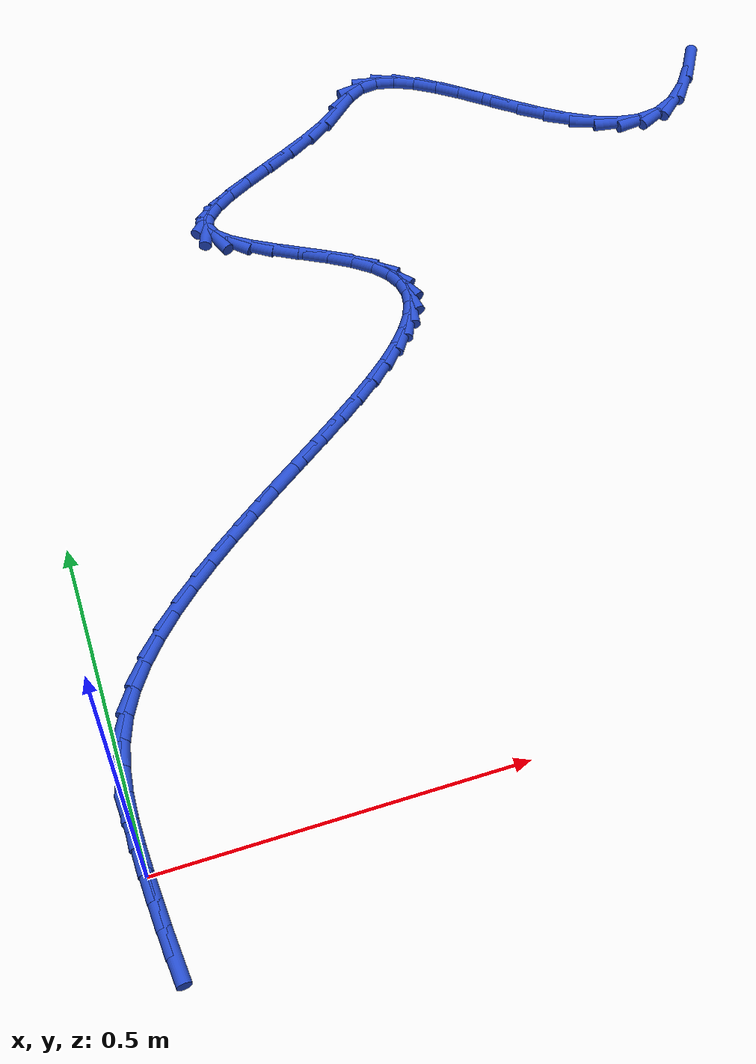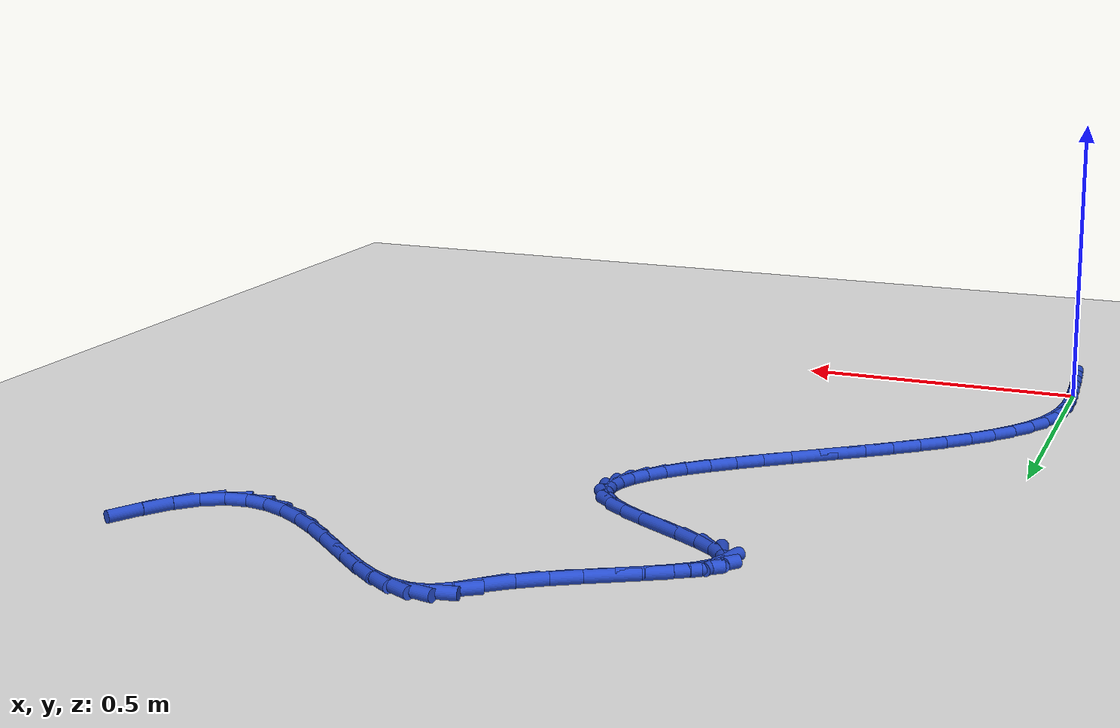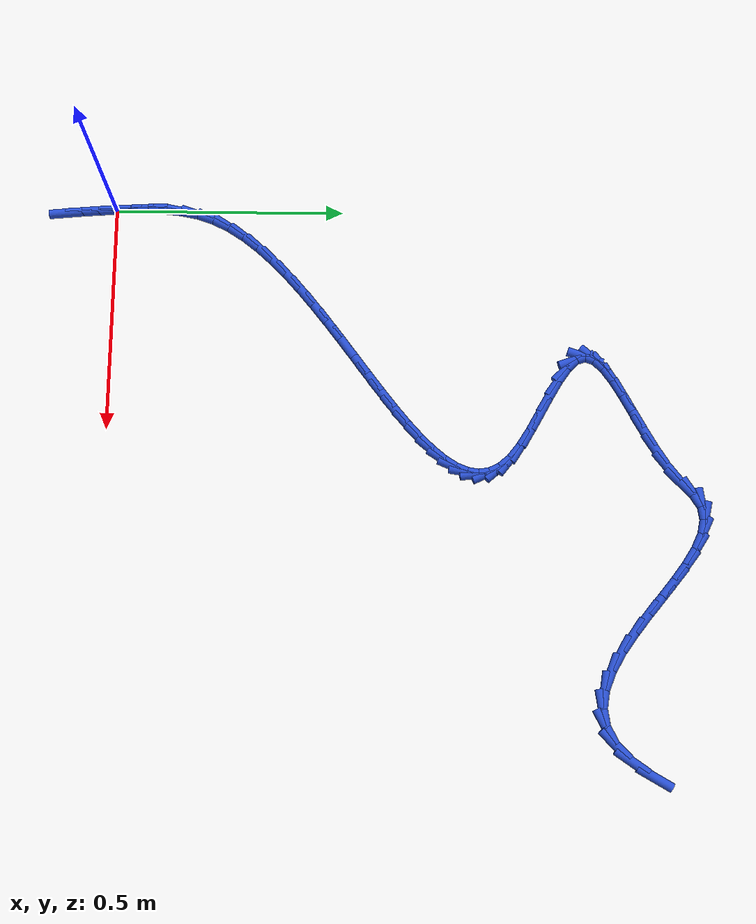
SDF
<sdf version="1.6">
 <world name="default">
  <model name="ground_plane">
   <static>1</static>
   <link name="link">
    <collision name="collision">
     <geometry><plane><normal>0 0 1</normal><size>100 100</size></plane></geometry>
     <surface><friction><ode><mu>100</mu><mu2>50</mu2></ode></friction></surface>
    </collision>
    <visual name="visual">
     <cast_shadows>0</cast_shadows>
     <geometry><plane><normal>0 0 1</normal><size>100 100</size></plane></geometry>
     <material>
      <script><uri>file://media/materials/scripts/gazebo.material</uri><name>Gazebo/WhiteGlow</name></script>
     </material>
    </visual>
   </link>
  </model>
  <model name="line">
   <link name="link_0">
    <pose>4.0549161250957866e-17 -6.938893903907228e-18 0.01 0 1.57 -1.52185023954393</pose>
    <collision name="collision">
     <geometry><cylinder><radius>0.01</radius><length>0.08</length></cylinder></geometry>
    </collision>
    <visual name="visual">
     <material>
      <script><name>Gazebo/Blue</name><uri>file://media/materials/scripts/gazebo.material</uri></script>
     </material>
     <geometry><cylinder><radius>0.01</radius><length>0.08</length></cylinder></geometry>
    </visual>
   </link>
   <link name="link_1">
    <pose>-0.0017894815718800692 0.03653105717077302 0.01 0 1.57 -1.5514126485488813</pose>
    <collision name="collision">
     <geometry><cylinder><radius>0.01</radius><length>0.08</length></cylinder></geometry>
    </collision>
    <visual name="visual">
     <material>
      <script><name>Gazebo/Blue</name><uri>file://media/materials/scripts/gazebo.material</uri></script>
     </material>
     <geometry><cylinder><radius>0.01</radius><length>0.08</length></cylinder></geometry>
    </visual>
   </link>
   <link name="link_2">
    <pose>-0.0024977876290873365 0.07306784529206682 0.01 0 1.57 1.53710981820446</pose>
    <collision name="collision">
     <geometry><cylinder><radius>0.01</radius><length>0.08</length></cylinder></geometry>
    </collision>
    <visual name="visual">
     <material>
      <script><name>Gazebo/Blue</name><uri>file://media/materials/scripts/gazebo.material</uri></script>
     </material>
     <geometry><cylinder><radius>0.01</radius><length>0.08</length></cylinder></geometry>
    </visual>
   </link>
   <link name="link_3">
    <pose>-0.0012706008610770033 0.10948368617913154 0.01 0 1.57 1.4601853632934978</pose>
    <collision name="collision">
     <geometry><cylinder><radius>0.01</radius><length>0.08</length></cylinder></geometry>
    </collision>
    <visual name="visual">
     <material>
      <script><name>Gazebo/Blue</name><uri>file://media/materials/scripts/gazebo.material</uri></script>
     </material>
     <geometry><cylinder><radius>0.01</radius><length>0.08</length></cylinder></geometry>
    </visual>
   </link>
   <link name="link_4">
    <pose>0.0027463960426956906 0.14565190164721714 0.01 0 1.57 1.3599433964282441</pose>
    <collision name="collision">
     <geometry><cylinder><radius>0.01</radius><length>0.08</length></cylinder></geometry>
    </collision>
    <visual name="visual">
     <material>
      <script><name>Gazebo/Blue</name><uri>file://media/materials/scripts/gazebo.material</uri></script>
     </material>
     <geometry><cylinder><radius>0.01</radius><length>0.08</length></cylinder></geometry>
    </visual>
   </link>
   <link name="link_5">
    <pose>0.010407520392775503 0.18144581351157385 0.01 0 1.57 1.239000416244004</pose>
    <collision name="collision">
     <geometry><cylinder><radius>0.01</radius><length>0.08</length></cylinder></geometry>
    </collision>
    <visual name="visual">
     <material>
      <script><name>Gazebo/Blue</name><uri>file://media/materials/scripts/gazebo.material</uri></script>
     </material>
     <geometry><cylinder><radius>0.01</radius><length>0.08</length></cylinder></geometry>
    </visual>
   </link>
   <link name="link_6">
    <pose>0.022567089499707205 0.21673874358745163 0.01 0 1.57 1.1064730745596445</pose>
    <collision name="collision">
     <geometry><cylinder><radius>0.01</radius><length>0.08</length></cylinder></geometry>
    </collision>
    <visual name="visual">
     <material>
      <script><name>Gazebo/Blue</name><uri>file://media/materials/scripts/gazebo.material</uri></script>
     </material>
     <geometry><cylinder><radius>0.01</radius><length>0.08</length></cylinder></geometry>
    </visual>
   </link>
   <link name="link_7">
    <pose>0.039935536010883205 0.25141704141289367 0.01 0 1.57 0.9900699989752234</pose>
    <collision name="collision">
     <geometry><cylinder><radius>0.01</radius><length>0.08</length></cylinder></geometry>
    </collision>
    <visual name="visual">
     <material>
      <script><name>Gazebo/Blue</name><uri>file://media/materials/scripts/gazebo.material</uri></script>
     </material>
     <geometry><cylinder><radius>0.01</radius><length>0.08</length></cylinder></geometry>
    </visual>
   </link>
   <link name="link_8">
    <pose>0.06227039153271126 0.28545333487096836 0.01 0 1.57 0.8969722031873676</pose>
    <collision name="collision">
     <geometry><cylinder><radius>0.01</radius><length>0.08</length></cylinder></geometry>
    </collision>
    <visual name="visual">
     <material>
      <script><name>Gazebo/Blue</name><uri>file://media/materials/scripts/gazebo.material</uri></script>
     </material>
     <geometry><cylinder><radius>0.01</radius><length>0.08</length></cylinder></geometry>
    </visual>
   </link>
   <link name="link_9">
    <pose>0.08894179943286262 0.31885532706733505 0.01 0 1.57 0.8233596326819432</pose>
    <collision name="collision">
     <geometry><cylinder><radius>0.01</radius><length>0.08</length></cylinder></geometry>
    </collision>
    <visual name="visual">
     <material>
      <script><name>Gazebo/Blue</name><uri>file://media/materials/scripts/gazebo.material</uri></script>
     </material>
     <geometry><cylinder><radius>0.01</radius><length>0.08</length></cylinder></geometry>
    </visual>
   </link>
   <link name="link_10">
    <pose>0.11931878188064625 0.35163082262411266 0.01 0 1.57 0.7656658133431868</pose>
    <collision name="collision">
     <geometry><cylinder><radius>0.01</radius><length>0.08</length></cylinder></geometry>
    </collision>
    <visual name="visual">
     <material>
      <script><name>Gazebo/Blue</name><uri>file://media/materials/scripts/gazebo.material</uri></script>
     </material>
     <geometry><cylinder><radius>0.01</radius><length>0.08</length></cylinder></geometry>
    </visual>
   </link>
   <link name="link_11">
    <pose>0.1527703610453711 0.3837876261634192 0.01 0 1.57 0.7209972789925128</pose>
    <collision name="collision">
     <geometry><cylinder><radius>0.01</radius><length>0.08</length></cylinder></geometry>
    </collision>
    <visual name="visual">
     <material>
      <script><name>Gazebo/Blue</name><uri>file://media/materials/scripts/gazebo.material</uri></script>
     </material>
     <geometry><cylinder><radius>0.01</radius><length>0.08</length></cylinder></geometry>
    </visual>
   </link>
   <link name="link_12">
    <pose>0.18866555909634602 0.4153335423073732 0.01 0 1.57 0.6871728330269824</pose>
    <collision name="collision">
     <geometry><cylinder><radius>0.01</radius><length>0.08</length></cylinder></geometry>
    </collision>
    <visual name="visual">
     <material>
      <script><name>Gazebo/Blue</name><uri>file://media/materials/scripts/gazebo.material</uri></script>
     </material>
     <geometry><cylinder><radius>0.01</radius><length>0.08</length></cylinder></geometry>
    </visual>
   </link>
   <link name="link_13">
    <pose>0.22637339820288008 0.4462763756780934 0.01 0 1.57 0.6626459752604367</pose>
    <collision name="collision">
     <geometry><cylinder><radius>0.01</radius><length>0.08</length></cylinder></geometry>
    </collision>
    <visual name="visual">
     <material>
      <script><name>Gazebo/Blue</name><uri>file://media/materials/scripts/gazebo.material</uri></script>
     </material>
     <geometry><cylinder><radius>0.01</radius><length>0.08</length></cylinder></geometry>
    </visual>
   </link>
   <link name="link_14">
    <pose>0.2652629005342819 0.47662393089769783 0.01 0 1.57 0.6464146395870033</pose>
    <collision name="collision">
     <geometry><cylinder><radius>0.01</radius><length>0.08</length></cylinder></geometry>
    </collision>
    <visual name="visual">
     <material>
      <script><name>Gazebo/Blue</name><uri>file://media/materials/scripts/gazebo.material</uri></script>
     </material>
     <geometry><cylinder><radius>0.01</radius><length>0.08</length></cylinder></geometry>
    </visual>
   </link>
   <link name="link_15">
    <pose>0.30470308825986075 0.5063840125883051 0.01 0 1.57 0.6379577326848062</pose>
    <collision name="collision">
     <geometry><cylinder><radius>0.01</radius><length>0.08</length></cylinder></geometry>
    </collision>
    <visual name="visual">
     <material>
      <script><name>Gazebo/Blue</name><uri>file://media/materials/scripts/gazebo.material</uri></script>
     </material>
     <geometry><cylinder><radius>0.01</radius><length>0.08</length></cylinder></geometry>
    </visual>
   </link>
   <link name="link_16">
    <pose>0.34406298354892534 0.5355644253720336 0.01 0 1.57 0.6372135277538157</pose>
    <collision name="collision">
     <geometry><cylinder><radius>0.01</radius><length>0.08</length></cylinder></geometry>
    </collision>
    <visual name="visual">
     <material>
      <script><name>Gazebo/Blue</name><uri>file://media/materials/scripts/gazebo.material</uri></script>
     </material>
     <geometry><cylinder><radius>0.01</radius><length>0.08</length></cylinder></geometry>
    </visual>
   </link>
   <link name="link_17">
    <pose>0.38271160857078473 0.5641729738710021 0.01 0 1.57 0.6446102346289906</pose>
    <collision name="collision">
     <geometry><cylinder><radius>0.01</radius><length>0.08</length></cylinder></geometry>
    </collision>
    <visual name="visual">
     <material>
      <script><name>Gazebo/Blue</name><uri>file://media/materials/scripts/gazebo.material</uri></script>
     </material>
     <geometry><cylinder><radius>0.01</radius><length>0.08</length></cylinder></geometry>
    </visual>
   </link>
   <link name="link_18">
    <pose>0.4200179854947478 0.5922174627073284 0.01 0 1.57 0.6611647308605674</pose>
    <collision name="collision">
     <geometry><cylinder><radius>0.01</radius><length>0.08</length></cylinder></geometry>
    </collision>
    <visual name="visual">
     <material>
      <script><name>Gazebo/Blue</name><uri>file://media/materials/scripts/gazebo.material</uri></script>
     </material>
     <geometry><cylinder><radius>0.01</radius><length>0.08</length></cylinder></geometry>
    </visual>
   </link>
   <link name="link_19">
    <pose>0.4553511364901233 0.6197056965031313 0.01 0 1.57 0.6886791478817208</pose>
    <collision name="collision">
     <geometry><cylinder><radius>0.01</radius><length>0.08</length></cylinder></geometry>
    </collision>
    <visual name="visual">
     <material>
      <script><name>Gazebo/Blue</name><uri>file://media/materials/scripts/gazebo.material</uri></script>
     </material>
     <geometry><cylinder><radius>0.01</radius><length>0.08</length></cylinder></geometry>
    </visual>
   </link>
   <link name="link_20">
    <pose>0.48808008372622036 0.6466454798805293 0.01 0 1.57 0.7300875339702076</pose>
    <collision name="collision">
     <geometry><cylinder><radius>0.01</radius><length>0.08</length></cylinder></geometry>
    </collision>
    <visual name="visual">
     <material>
      <script><name>Gazebo/Blue</name><uri>file://media/materials/scripts/gazebo.material</uri></script>
     </material>
     <geometry><cylinder><radius>0.01</radius><length>0.08</length></cylinder></geometry>
    </visual>
   </link>
   <link name="link_21">
    <pose>0.517573849372348 0.6730446174616407 0.01 0 1.57 0.7900334398047495</pose>
    <collision name="collision">
     <geometry><cylinder><radius>0.01</radius><length>0.08</length></cylinder></geometry>
    </collision>
    <visual name="visual">
     <material>
      <script><name>Gazebo/Blue</name><uri>file://media/materials/scripts/gazebo.material</uri></script>
     </material>
     <geometry><cylinder><radius>0.01</radius><length>0.08</length></cylinder></geometry>
    </visual>
   </link>
   <link name="link_22">
    <pose>0.5432014555978149 0.6989109138685841 0.01 0 1.57 0.8757611371465852</pose>
    <collision name="collision">
     <geometry><cylinder><radius>0.01</radius><length>0.08</length></cylinder></geometry>
    </collision>
    <visual name="visual">
     <material>
      <script><name>Gazebo/Blue</name><uri>file://media/materials/scripts/gazebo.material</uri></script>
     </material>
     <geometry><cylinder><radius>0.01</radius><length>0.08</length></cylinder></geometry>
    </visual>
   </link>
   <link name="link_23">
    <pose>0.5643319245719303 0.7242521737234777 0.01 0 1.57 0.998204257731185</pose>
    <collision name="collision">
     <geometry><cylinder><radius>0.01</radius><length>0.08</length></cylinder></geometry>
    </collision>
    <visual name="visual">
     <material>
      <script><name>Gazebo/Blue</name><uri>file://media/materials/scripts/gazebo.material</uri></script>
     </material>
     <geometry><cylinder><radius>0.01</radius><length>0.08</length></cylinder></geometry>
    </visual>
   </link>
   <link name="link_24">
    <pose>0.5803342784640025 0.74907620164844 0.01 0 1.57 1.1720805567565529</pose>
    <collision name="collision">
     <geometry><cylinder><radius>0.01</radius><length>0.08</length></cylinder></geometry>
    </collision>
    <visual name="visual">
     <material>
      <script><name>Gazebo/Blue</name><uri>file://media/materials/scripts/gazebo.material</uri></script>
     </material>
     <geometry><cylinder><radius>0.01</radius><length>0.08</length></cylinder></geometry>
    </visual>
   </link>
   <link name="link_25">
    <pose>0.5905775394433411 0.7733908022655895 0.01 0 1.57 1.4103762416425547</pose>
    <collision name="collision">
     <geometry><cylinder><radius>0.01</radius><length>0.08</length></cylinder></geometry>
    </collision>
    <visual name="visual">
     <material>
      <script><name>Gazebo/Blue</name><uri>file://media/materials/scripts/gazebo.material</uri></script>
     </material>
     <geometry><cylinder><radius>0.01</radius><length>0.08</length></cylinder></geometry>
    </visual>
   </link>
   <link name="link_26">
    <pose>0.5944307296792548 0.7972037801970446 0.01 0 1.57 -1.4357749925882015</pose>
    <collision name="collision">
     <geometry><cylinder><radius>0.01</radius><length>0.08</length></cylinder></geometry>
    </collision>
    <visual name="visual">
     <material>
      <script><name>Gazebo/Blue</name><uri>file://media/materials/scripts/gazebo.material</uri></script>
     </material>
     <geometry><cylinder><radius>0.01</radius><length>0.08</length></cylinder></geometry>
    </visual>
   </link>
   <link name="link_27">
    <pose>0.5912628713410522 0.8205229400649234 0.01 0 1.57 -1.128272459672479</pose>
    <collision name="collision">
     <geometry><cylinder><radius>0.01</radius><length>0.08</length></cylinder></geometry>
    </collision>
    <visual name="visual">
     <material>
      <script><name>Gazebo/Blue</name><uri>file://media/materials/scripts/gazebo.material</uri></script>
     </material>
     <geometry><cylinder><radius>0.01</radius><length>0.08</length></cylinder></geometry>
    </visual>
   </link>
   <link name="link_28">
    <pose>0.5804429865980428 0.8433560864913452 0.01 0 1.57 -0.8636801971120777</pose>
    <collision name="collision">
     <geometry><cylinder><radius>0.01</radius><length>0.08</length></cylinder></geometry>
    </collision>
    <visual name="visual">
     <material>
      <script><name>Gazebo/Blue</name><uri>file://media/materials/scripts/gazebo.material</uri></script>
     </material>
     <geometry><cylinder><radius>0.01</radius><length>0.08</length></cylinder></geometry>
    </visual>
   </link>
   <link name="link_29">
    <pose>0.5613400976195351 0.8657110240984276 0.01 0 1.57 -0.6682199195717694</pose>
    <collision name="collision">
     <geometry><cylinder><radius>0.01</radius><length>0.08</length></cylinder></geometry>
    </collision>
    <visual name="visual">
     <material>
      <script><name>Gazebo/Blue</name><uri>file://media/materials/scripts/gazebo.material</uri></script>
     </material>
     <geometry><cylinder><radius>0.01</radius><length>0.08</length></cylinder></geometry>
    </visual>
   </link>
   <link name="link_30">
    <pose>0.5336132605426608 0.8875975044585684 0.01 0 1.57 -0.5584790025619196</pose>
    <collision name="collision">
     <geometry><cylinder><radius>0.01</radius><length>0.08</length></cylinder></geometry>
    </collision>
    <visual name="visual">
     <material>
      <script><name>Gazebo/Blue</name><uri>file://media/materials/scripts/gazebo.material</uri></script>
     </material>
     <geometry><cylinder><radius>0.01</radius><length>0.08</length></cylinder></geometry>
    </visual>
   </link>
   <link name="link_31">
    <pose>0.4992941514390502 0.909041206151193 0.01 0 1.57 -0.5086994821933081</pose>
    <collision name="collision">
     <geometry><cylinder><radius>0.01</radius><length>0.08</length></cylinder></geometry>
    </collision>
    <visual name="visual">
     <material>
      <script><name>Gazebo/Blue</name><uri>file://media/materials/scripts/gazebo.material</uri></script>
     </material>
     <geometry><cylinder><radius>0.01</radius><length>0.08</length></cylinder></geometry>
    </visual>
   </link>
   <link name="link_32">
    <pose>0.4615746243389148 0.9300755958393682 0.01 0 1.57 -0.49883553529728303</pose>
    <collision name="collision">
     <geometry><cylinder><radius>0.01</radius><length>0.08</length></cylinder></geometry>
    </collision>
    <visual name="visual">
     <material>
      <script><name>Gazebo/Blue</name><uri>file://media/materials/scripts/gazebo.material</uri></script>
     </material>
     <geometry><cylinder><radius>0.01</radius><length>0.08</length></cylinder></geometry>
    </visual>
   </link>
   <link name="link_33">
    <pose>0.4236544309182554 0.9507341932017568 0.01 0 1.57 -0.5269130423250743</pose>
    <collision name="collision">
     <geometry><cylinder><radius>0.01</radius><length>0.08</length></cylinder></geometry>
    </collision>
    <visual name="visual">
     <material>
      <script><name>Gazebo/Blue</name><uri>file://media/materials/scripts/gazebo.material</uri></script>
     </material>
     <geometry><cylinder><radius>0.01</radius><length>0.08</length></cylinder></geometry>
    </visual>
   </link>
   <link name="link_34">
    <pose>0.38873332285307316 0.9710505179170217 0.01 0 1.57 -0.6084319466866757</pose>
    <collision name="collision">
     <geometry><cylinder><radius>0.01</radius><length>0.08</length></cylinder></geometry>
    </collision>
    <visual name="visual">
     <material>
      <script><name>Gazebo/Blue</name><uri>file://media/materials/scripts/gazebo.material</uri></script>
     </material>
     <geometry><cylinder><radius>0.01</radius><length>0.08</length></cylinder></geometry>
    </visual>
   </link>
   <link name="link_35">
    <pose>0.36001105181936877 0.9910580896638257 0.01 0 1.57 -0.7958611140555002</pose>
    <collision name="collision">
     <geometry><cylinder><radius>0.01</radius><length>0.08</length></cylinder></geometry>
    </collision>
    <visual name="visual">
     <material>
      <script><name>Gazebo/Blue</name><uri>file://media/materials/scripts/gazebo.material</uri></script>
     </material>
     <geometry><cylinder><radius>0.01</radius><length>0.08</length></cylinder></geometry>
    </visual>
   </link>
   <link name="link_36">
    <pose>0.34068736949314327 1.0107904281208315 0.01 0 1.57 -1.2360688434260683</pose>
    <collision name="collision">
     <geometry><cylinder><radius>0.01</radius><length>0.08</length></cylinder></geometry>
    </collision>
    <visual name="visual">
     <material>
      <script><name>Gazebo/Blue</name><uri>file://media/materials/scripts/gazebo.material</uri></script>
     </material>
     <geometry><cylinder><radius>0.01</radius><length>0.08</length></cylinder></geometry>
    </visual>
   </link>
   <link name="link_37">
    <pose>0.3339076174800267 1.030282802776633 0.01 0 1.57 1.2392886105134389</pose>
    <collision name="collision">
     <geometry><cylinder><radius>0.01</radius><length>0.08</length></cylinder></geometry>
    </collision>
    <visual name="visual">
     <material>
      <script><name>Gazebo/Blue</name><uri>file://media/materials/scripts/gazebo.material</uri></script>
     </material>
     <geometry><cylinder><radius>0.01</radius><length>0.08</length></cylinder></geometry>
    </visual>
   </link>
   <link name="link_38">
    <pose>0.34057149516570917 1.0496427022334927 0.01 0 1.57 0.8232768029697289</pose>
    <collision name="collision">
     <geometry><cylinder><radius>0.01</radius><length>0.08</length></cylinder></geometry>
    </collision>
    <visual name="visual">
     <material>
      <script><name>Gazebo/Blue</name><uri>file://media/materials/scripts/gazebo.material</uri></script>
     </material>
     <geometry><cylinder><radius>0.01</radius><length>0.08</length></cylinder></geometry>
    </visual>
   </link>
   <link name="link_39">
    <pose>0.35858373851987274 1.0690739321300435 0.01 0 1.57 0.6296447900452782</pose>
    <collision name="collision">
     <geometry><cylinder><radius>0.01</radius><length>0.08</length></cylinder></geometry>
    </collision>
    <visual name="visual">
     <material>
      <script><name>Gazebo/Blue</name><uri>file://media/materials/scripts/gazebo.material</uri></script>
     </material>
     <geometry><cylinder><radius>0.01</radius><length>0.08</length></cylinder></geometry>
    </visual>
   </link>
   <link name="link_40">
    <pose>0.385640903360843 1.088786993109975 0.01 0 1.57 0.5388125860778482</pose>
    <collision name="collision">
     <geometry><cylinder><radius>0.01</radius><length>0.08</length></cylinder></geometry>
    </collision>
    <visual name="visual">
     <material>
      <script><name>Gazebo/Blue</name><uri>file://media/materials/scripts/gazebo.material</uri></script>
     </material>
     <geometry><cylinder><radius>0.01</radius><length>0.08</length></cylinder></geometry>
    </visual>
   </link>
   <link name="link_41">
    <pose>0.41943954550694595 1.1089923858169755 0.01 0 1.57 0.5003913533586438</pose>
    <collision name="collision">
     <geometry><cylinder><radius>0.01</radius><length>0.08</length></cylinder></geometry>
    </collision>
    <visual name="visual">
     <material>
      <script><name>Gazebo/Blue</name><uri>file://media/materials/scripts/gazebo.material</uri></script>
     </material>
     <geometry><cylinder><radius>0.01</radius><length>0.08</length></cylinder></geometry>
    </visual>
   </link>
   <link name="link_42">
    <pose>0.457676220776507 1.1299006108947345 0.01 0 1.57 0.495537356174492</pose>
    <collision name="collision">
     <geometry><cylinder><radius>0.01</radius><length>0.08</length></cylinder></geometry>
    </collision>
    <visual name="visual">
     <material>
      <script><name>Gazebo/Blue</name><uri>file://media/materials/scripts/gazebo.material</uri></script>
     </material>
     <geometry><cylinder><radius>0.01</radius><length>0.08</length></cylinder></geometry>
    </visual>
   </link>
   <link name="link_43">
    <pose>0.4980474849878519 1.15172216898694 0.01 0 1.57 0.5186319276873228</pose>
    <collision name="collision">
     <geometry><cylinder><radius>0.01</radius><length>0.08</length></cylinder></geometry>
    </collision>
    <visual name="visual">
     <material>
      <script><name>Gazebo/Blue</name><uri>file://media/materials/scripts/gazebo.material</uri></script>
     </material>
     <geometry><cylinder><radius>0.01</radius><length>0.08</length></cylinder></geometry>
    </visual>
   </link>
   <link name="link_44">
    <pose>0.538249893959307 1.1746675607372814 0.01 0 1.57 0.5717997279888994</pose>
    <collision name="collision">
     <geometry><cylinder><radius>0.01</radius><length>0.08</length></cylinder></geometry>
    </collision>
    <visual name="visual">
     <material>
      <script><name>Gazebo/Blue</name><uri>file://media/materials/scripts/gazebo.material</uri></script>
     </material>
     <geometry><cylinder><radius>0.01</radius><length>0.08</length></cylinder></geometry>
    </visual>
   </link>
   <link name="link_45">
    <pose>0.5759800035091973 1.1989472867894477 0.01 0 1.57 0.6646892120676976</pose>
    <collision name="collision">
     <geometry><cylinder><radius>0.01</radius><length>0.08</length></cylinder></geometry>
    </collision>
    <visual name="visual">
     <material>
      <script><name>Gazebo/Blue</name><uri>file://media/materials/scripts/gazebo.material</uri></script>
     </material>
     <geometry><cylinder><radius>0.01</radius><length>0.08</length></cylinder></geometry>
    </visual>
   </link>
   <link name="link_46">
    <pose>0.608934369455849 1.2247718477871272 0.01 0 1.57 0.7715759841904085</pose>
    <collision name="collision">
     <geometry><cylinder><radius>0.01</radius><length>0.08</length></cylinder></geometry>
    </collision>
    <visual name="visual">
     <material>
      <script><name>Gazebo/Blue</name><uri>file://media/materials/scripts/gazebo.material</uri></script>
     </material>
     <geometry><cylinder><radius>0.01</radius><length>0.08</length></cylinder></geometry>
    </visual>
   </link>
   <link name="link_47">
    <pose>0.6358750537948947 1.2509778818736104 0.01 0 1.57 0.5727125876559368</pose>
    <collision name="collision">
     <geometry><cylinder><radius>0.01</radius><length>0.08</length></cylinder></geometry>
    </collision>
    <visual name="visual">
     <material>
      <script><name>Gazebo/Blue</name><uri>file://media/materials/scripts/gazebo.material</uri></script>
     </material>
     <geometry><cylinder><radius>0.01</radius><length>0.08</length></cylinder></geometry>
    </visual>
   </link>
   <link name="link_48">
    <pose>0.6622998785806712 1.268016668502915 0.01 0 1.57 0.15399709920893923</pose>
    <collision name="collision">
     <geometry><cylinder><radius>0.01</radius><length>0.08</length></cylinder></geometry>
    </collision>
    <visual name="visual">
     <material>
      <script><name>Gazebo/Blue</name><uri>file://media/materials/scripts/gazebo.material</uri></script>
     </material>
     <geometry><cylinder><radius>0.01</radius><length>0.08</length></cylinder></geometry>
    </visual>
   </link>
   <link name="link_49">
    <pose>0.6910181468104952 1.2724744936100958 0.01 0 1.57 -0.1992596876874177</pose>
    <collision name="collision">
     <geometry><cylinder><radius>0.01</radius><length>0.08</length></cylinder></geometry>
    </collision>
    <visual name="visual">
     <material>
      <script><name>Gazebo/Blue</name><uri>file://media/materials/scripts/gazebo.material</uri></script>
     </material>
     <geometry><cylinder><radius>0.01</radius><length>0.08</length></cylinder></geometry>
    </visual>
   </link>
   <link name="link_50">
    <pose>0.7217977998325201 1.2662588683845148 0.01 0 1.57 -0.42978826728244734</pose>
    <collision name="collision">
     <geometry><cylinder><radius>0.01</radius><length>0.08</length></cylinder></geometry>
    </collision>
    <visual name="visual">
     <material>
      <script><name>Gazebo/Blue</name><uri>file://media/materials/scripts/gazebo.material</uri></script>
     </material>
     <geometry><cylinder><radius>0.01</radius><length>0.08</length></cylinder></geometry>
    </visual>
   </link>
   <link name="link_51">
    <pose>0.7543798264323355 1.25132441489047 0.01 0 1.57 -0.5663641937381623</pose>
    <collision name="collision">
     <geometry><cylinder><radius>0.01</radius><length>0.08</length></cylinder></geometry>
    </collision>
    <visual name="visual">
     <material>
      <script><name>Gazebo/Blue</name><uri>file://media/materials/scripts/gazebo.material</uri></script>
     </material>
     <geometry><cylinder><radius>0.01</radius><length>0.08</length></cylinder></geometry>
    </visual>
   </link>
   <link name="link_52">
    <pose>0.7885052153955313 1.22962575519226 0.01 0 1.57 -0.6426137799060258</pose>
    <collision name="collision">
     <geometry><cylinder><radius>0.01</radius><length>0.08</length></cylinder></geometry>
    </collision>
    <visual name="visual">
     <material>
      <script><name>Gazebo/Blue</name><uri>file://media/materials/scripts/gazebo.material</uri></script>
     </material>
     <geometry><cylinder><radius>0.01</radius><length>0.08</length></cylinder></geometry>
    </visual>
   </link>
   <link name="link_53">
    <pose>0.8239149555076982 1.2031175113541839 0.01 0 1.57 -0.6783310738397543</pose>
    <collision name="collision">
     <geometry><cylinder><radius>0.01</radius><length>0.08</length></cylinder></geometry>
    </collision>
    <visual name="visual">
     <material>
      <script><name>Gazebo/Blue</name><uri>file://media/materials/scripts/gazebo.material</uri></script>
     </material>
     <geometry><cylinder><radius>0.01</radius><length>0.08</length></cylinder></geometry>
    </visual>
   </link>
   <link name="link_54">
    <pose>0.8603500355544256 1.1737543054405393 0.01 0 1.57 -0.6829218465158536</pose>
    <collision name="collision">
     <geometry><cylinder><radius>0.01</radius><length>0.08</length></cylinder></geometry>
    </collision>
    <visual name="visual">
     <material>
      <script><name>Gazebo/Blue</name><uri>file://media/materials/scripts/gazebo.material</uri></script>
     </material>
     <geometry><cylinder><radius>0.01</radius><length>0.08</length></cylinder></geometry>
    </visual>
   </link>
   <link name="link_55">
    <pose>0.8975514443213037 1.143490759515624 0.01 0 1.57 -0.6590615180974684</pose>
    <collision name="collision">
     <geometry><cylinder><radius>0.01</radius><length>0.08</length></cylinder></geometry>
    </collision>
    <visual name="visual">
     <material>
      <script><name>Gazebo/Blue</name><uri>file://media/materials/scripts/gazebo.material</uri></script>
     </material>
     <geometry><cylinder><radius>0.01</radius><length>0.08</length></cylinder></geometry>
    </visual>
   </link>
   <link name="link_56">
    <pose>0.9352601705939225 1.1142814956437381 0.01 0 1.57 -0.6041615672631026</pose>
    <collision name="collision">
     <geometry><cylinder><radius>0.01</radius><length>0.08</length></cylinder></geometry>
    </collision>
    <visual name="visual">
     <material>
      <script><name>Gazebo/Blue</name><uri>file://media/materials/scripts/gazebo.material</uri></script>
     </material>
     <geometry><cylinder><radius>0.01</radius><length>0.08</length></cylinder></geometry>
    </visual>
   </link>
   <link name="link_57">
    <pose>0.9732172031578722 1.0880811358891784 0.01 0 1.57 -0.510225276558021</pose>
    <collision name="collision">
     <geometry><cylinder><radius>0.01</radius><length>0.08</length></cylinder></geometry>
    </collision>
    <visual name="visual">
     <material>
      <script><name>Gazebo/Blue</name><uri>file://media/materials/scripts/gazebo.material</uri></script>
     </material>
     <geometry><cylinder><radius>0.01</radius><length>0.08</length></cylinder></geometry>
    </visual>
   </link>
   <link name="link_58">
    <pose>1.0111635307987423 1.0668443023162446 0.01 0 1.57 -0.363183490446987</pose>
    <collision name="collision">
     <geometry><cylinder><radius>0.01</radius><length>0.08</length></cylinder></geometry>
    </collision>
    <visual name="visual">
     <material>
      <script><name>Gazebo/Blue</name><uri>file://media/materials/scripts/gazebo.material</uri></script>
     </material>
     <geometry><cylinder><radius>0.01</radius><length>0.08</length></cylinder></geometry>
    </visual>
   </link>
   <link name="link_59">
    <pose>1.0488401423021236 1.052525616989234 0.01 0 1.57 -0.14556404478726406</pose>
    <collision name="collision">
     <geometry><cylinder><radius>0.01</radius><length>0.08</length></cylinder></geometry>
    </collision>
    <visual name="visual">
     <material>
      <script><name>Gazebo/Blue</name><uri>file://media/materials/scripts/gazebo.material</uri></script>
     </material>
     <geometry><cylinder><radius>0.01</radius><length>0.08</length></cylinder></geometry>
    </visual>
   </link>
   <link name="link_60">
    <pose>1.085988026453605 1.0470797019724454 0.01 0 1.57 0.14693811745827254</pose>
    <collision name="collision">
     <geometry><cylinder><radius>0.01</radius><length>0.08</length></cylinder></geometry>
    </collision>
    <visual name="visual">
     <material>
      <script><name>Gazebo/Blue</name><uri>file://media/materials/scripts/gazebo.material</uri></script>
     </material>
     <geometry><cylinder><radius>0.01</radius><length>0.08</length></cylinder></geometry>
    </visual>
   </link>
   <link name="link_61">
    <pose>1.122348172038778 1.0524611793301777 0.01 0 1.57 0.4750626391697864</pose>
    <collision name="collision">
     <geometry><cylinder><radius>0.01</radius><length>0.08</length></cylinder></geometry>
    </collision>
    <visual name="visual">
     <material>
      <script><name>Gazebo/Blue</name><uri>file://media/materials/scripts/gazebo.material</uri></script>
     </material>
     <geometry><cylinder><radius>0.01</radius><length>0.08</length></cylinder></geometry>
    </visual>
   </link>
   <link name="link_62">
    <pose>1.1576615678432316 1.0706246711267289 0.01 0 1.57 0.7688002010265766</pose>
    <collision name="collision">
     <geometry><cylinder><radius>0.01</radius><length>0.08</length></cylinder></geometry>
    </collision>
    <visual name="visual">
     <material>
      <script><name>Gazebo/Blue</name><uri>file://media/materials/scripts/gazebo.material</uri></script>
     </material>
     <geometry><cylinder><radius>0.01</radius><length>0.08</length></cylinder></geometry>
    </visual>
   </link>
   <link name="link_63">
    <pose>1.1916681852753925 1.103520738332192 0.01 0 1.57 0.9641058865481967</pose>
    <collision name="collision">
     <geometry><cylinder><radius>0.01</radius><length>0.08</length></cylinder></geometry>
    </collision>
    <visual name="visual">
     <material>
      <script><name>Gazebo/Blue</name><uri>file://media/materials/scripts/gazebo.material</uri></script>
     </material>
     <geometry><cylinder><radius>0.01</radius><length>0.08</length></cylinder></geometry>
    </visual>
   </link>
   <link name="link_64">
    <pose>1.2229961047785605 1.1486615742011617 0.01 0 1.57 1.050769904820477</pose>
    <collision name="collision">
     <geometry><cylinder><radius>0.01</radius><length>0.08</length></cylinder></geometry>
    </collision>
    <visual name="visual">
     <material>
      <script><name>Gazebo/Blue</name><uri>file://media/materials/scripts/gazebo.material</uri></script>
     </material>
     <geometry><cylinder><radius>0.01</radius><length>0.08</length></cylinder></geometry>
    </visual>
   </link>
   <link name="link_277">
    <pose>0.008095685114359956 -0.10887185541344839 0.01 0 1.57 -1.48052775702787</pose>
    <collision name="collision">
     <geometry><cylinder><radius>0.01</radius><length>0.08</length></cylinder></geometry>
    </collision>
    <visual name="visual">
     <material>
      <script><name>Gazebo/Blue</name><uri>file://media/materials/scripts/gazebo.material</uri></script>
     </material>
     <geometry><cylinder><radius>0.01</radius><length>0.08</length></cylinder></geometry>
    </visual>
   </link>
   <link name="link_278">
    <pose>0.004822512420749454 -0.07271001658854101 0.01 0 1.57 -1.4984779437603797</pose>
    <collision name="collision">
     <geometry><cylinder><radius>0.01</radius><length>0.08</length></cylinder></geometry>
    </collision>
    <visual name="visual">
     <material>
      <script><name>Gazebo/Blue</name><uri>file://media/materials/scripts/gazebo.material</uri></script>
     </material>
     <geometry><cylinder><radius>0.01</radius><length>0.08</length></cylinder></geometry>
    </visual>
   </link>
   <link name="link_279">
    <pose>0.0021935012729019194 -0.03642012401519655 0.01 0 1.57 -1.5106412650151164</pose>
    <collision name="collision">
     <geometry><cylinder><radius>0.01</radius><length>0.08</length></cylinder></geometry>
    </collision>
    <visual name="visual">
     <material>
      <script><name>Gazebo/Blue</name><uri>file://media/materials/scripts/gazebo.material</uri></script>
     </material>
     <geometry><cylinder><radius>0.01</radius><length>0.08</length></cylinder></geometry>
    </visual>
   </link>
   <link name="link_280">
    <pose>2.905661822261152e-17 1.942890293094024e-16 0.01 0 1.57 -1.5170449580165966</pose>
    <collision name="collision">
     <geometry><cylinder><radius>0.01</radius><length>0.08</length></cylinder></geometry>
    </collision>
    <visual name="visual">
     <material>
      <script><name>Gazebo/Blue</name><uri>file://media/materials/scripts/gazebo.material</uri></script>
     </material>
     <geometry><cylinder><radius>0.01</radius><length>0.08</length></cylinder></geometry>
    </visual>
   </link>
   <link name="link_281">
    <pose>-0.0019666430687737798 0.036552533150467637 0.01 0 1.57 -1.5177366236987644</pose>
    <collision name="collision">
     <geometry><cylinder><radius>0.01</radius><length>0.08</length></cylinder></geometry>
    </collision>
    <visual name="visual">
     <material>
      <script><name>Gazebo/Blue</name><uri>file://media/materials/scripts/gazebo.material</uri></script>
     </material>
     <geometry><cylinder><radius>0.01</radius><length>0.08</length></cylinder></geometry>
    </visual>
   </link>
   <link name="link_282">
    <pose>-0.003915079604236984 0.07323965312962322 0.01 0 1.57 -1.5173914199745089</pose>
    <collision name="collision">
     <geometry><cylinder><radius>0.01</radius><length>0.08</length></cylinder></geometry>
    </collision>
    <visual name="visual">
     <material>
      <script><name>Gazebo/Blue</name><uri>file://media/materials/scripts/gazebo.material</uri></script>
     </material>
     <geometry><cylinder><radius>0.01</radius><length>0.08</length></cylinder></geometry>
    </visual>
   </link>
  </model>
 </world>
</sdf>
